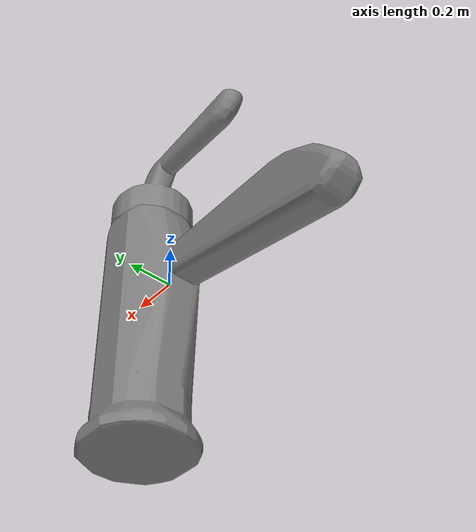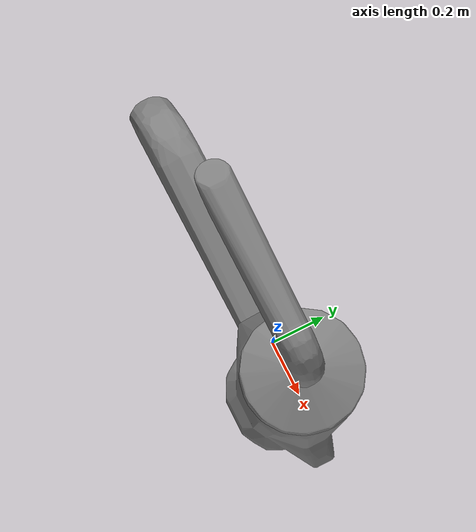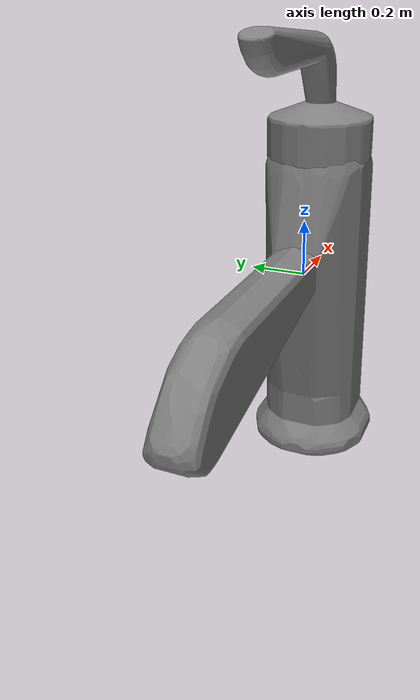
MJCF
<mujoco model="partnet_9d98b2c3591441a83321831d2245cf06">
  <compiler angle="radian"/>

  <asset>
    <mesh name="link_0" content_type="model/obj" file="cvx_objs/link_0.obj"/>
    <mesh name="link_1" content_type="model/obj" file="cvx_objs/link_1.obj"/>
  </asset>

  <worldbody>
    <geom quat="0.5 0.5 -0.5 -0.5" type="mesh" mesh="link_1"/>
    <body name="link_0" pos="0.152628 -0.000210755 0" quat="0.5 0.5 -0.5 -0.5">
      <joint name="joint_0" pos="0 0 0" axis="0 1 0" range="-1.5708 1.5708"/>
      <geom type="mesh" mesh="link_0"/>
    </body>
  </worldbody>
</mujoco>
